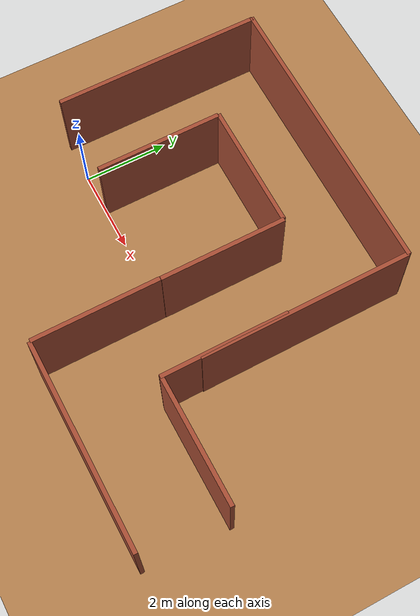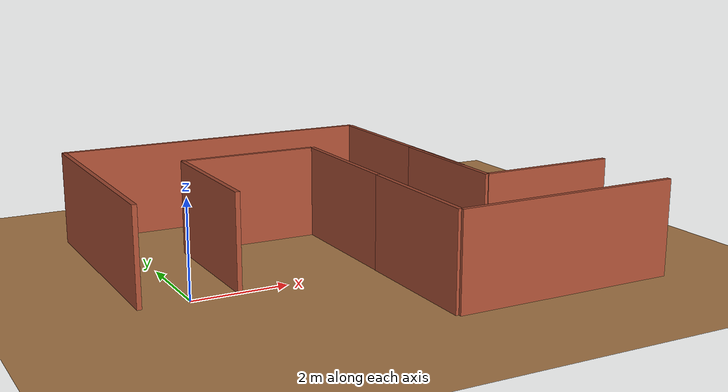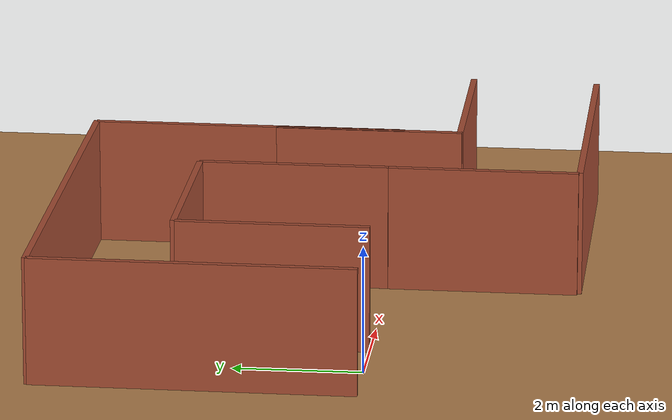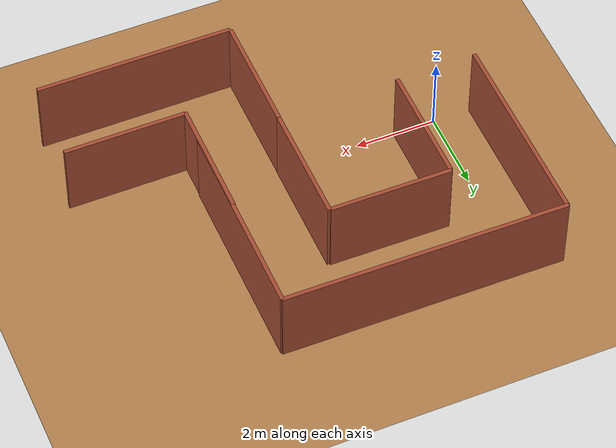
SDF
<sdf version="1.6">
 <world name="default">
  <light name="sun" type="directional">
   <pose>0 0 10 0 -0 0</pose>
   <diffuse>0.8 0.8 0.8 1</diffuse>
   <specular>0.2 0.2 0.2 1</specular>
   <attenuation>
    <range>1000</range>
    <constant>0.9</constant>
    <linear>0.01</linear>
    <quadratic>0.001</quadratic>
   </attenuation>
   <direction>-0.5 0.1 -0.9</direction>
  </light>
  <model name="ground_plane">
   <static>1</static>
   <link name="link">
    <collision name="collision">
     <geometry><plane><normal>0 0 1</normal><size>100 100</size></plane></geometry>
     <surface>
      <contact><collide_bitmask>65535</collide_bitmask></contact>
      <friction><ode><mu>100</mu><mu2>50</mu2></ode></friction>
     </surface>
    </collision>
    <visual name="visual">
     <cast_shadows>0</cast_shadows>
     <geometry><plane><normal>0 0 1</normal><size>100 100</size></plane></geometry>
     <material>
      <script><uri>file://media/materials/scripts/gazebo.material</uri><name>Gazebo/WoodFloor</name></script>
     </material>
    </visual>
   </link>
  </model>
  <gravity>0 0 -9.8</gravity>
  <magnetic_field>6e-06 2.3e-05 -4.2e-05</magnetic_field>
  <atmosphere type="adiabatic"/>
  <physics name="default_physics" default="0" type="ode">
   <max_step_size>0.001</max_step_size>
   <real_time_factor>1</real_time_factor>
   <real_time_update_rate>1000</real_time_update_rate>
  </physics>
  <scene><ambient>0.4 0.4 0.4 1</ambient><background>0.7 0.7 0.7 1</background><shadows>1</shadows></scene>
  <spherical_coordinates>
   <surface_model>EARTH_WGS84</surface_model>
   <latitude_deg>0</latitude_deg>
   <longitude_deg>0</longitude_deg>
   <elevation>0</elevation>
   <heading_deg>0</heading_deg>
  </spherical_coordinates>
  <model name="Untitled">
   <link name="link_0">
    <inertial>
     <mass>4.98571</mass>
     <inertia><ixx>11.9895</ixx><ixy>0</ixy><ixz>0</ixz><iyy>1.66606</iyy><iyz>0</iyz><izz>10.3317</izz></inertia>
    </inertial>
    <pose>-0.990393 2.48292 0.996212 0 -0 0</pose>
    <visual name="visual">
     <geometry><box><size>0.1 4.9857 2</size></box></geometry>
     <material>
      <lighting>1</lighting>
      <script><uri>file://media/materials/scripts/gazebo.material</uri><name>Gazebo/Bricks</name></script>
      <shader type="pixel"><normal_map>__default__</normal_map></shader>
      <ambient>0.3 0.3 0.3 1</ambient>
      <diffuse>0.7 0.7 0.7 1</diffuse>
      <specular>0.01 0.01 0.01 1</specular>
      <emissive>0 0 0 1</emissive>
     </material>
    </visual>
    <collision name="collision">
     <geometry><box><size>0.1 4.9857 2</size></box></geometry>
     <surface>
      <friction>
       <ode><mu>1</mu><mu2>1</mu2><fdir1>0 0 0</fdir1><slip1>0</slip1><slip2>0</slip2></ode>
       <torsional>
        <coefficient>1</coefficient>
        <patch_radius>0</patch_radius>
        <surface_radius>0</surface_radius>
        <use_patch_radius>1</use_patch_radius>
        <ode><slip>0</slip></ode>
       </torsional>
      </friction>
      <bounce><restitution_coefficient>0</restitution_coefficient><threshold>1e+06</threshold></bounce>
      <contact>
       <collide_without_contact>0</collide_without_contact>
       <collide_without_contact_bitmask>1</collide_without_contact_bitmask>
       <collide_bitmask>1</collide_bitmask>
       <ode>
        <soft_cfm>0</soft_cfm>
        <soft_erp>0.2</soft_erp>
        <kp>1e+13</kp>
        <kd>1</kd>
        <max_vel>0.01</max_vel>
        <min_depth>0</min_depth>
       </ode>
       <bullet>
        <split_impulse>1</split_impulse>
        <split_impulse_penetration_threshold>-0.01</split_impulse_penetration_threshold>
        <soft_cfm>0</soft_cfm>
        <soft_erp>0.2</soft_erp>
        <kp>1e+13</kp>
        <kd>1</kd>
       </bullet>
      </contact>
     </surface>
    </collision>
   </link>
   <link name="link_0_clone">
    <inertial>
     <mass>2.98774</mass>
     <inertia><ixx>3.21841</ixx><ixy>0</ixy><ixz>0</ixz><iyy>0.998402</iyy><iyz>0</iyz><izz>2.22499</izz></inertia>
    </inertial>
    <pose>1.00554 1.49859 0.996212 0 -0 0</pose>
    <visual name="visual">
     <geometry><box><size>0.1 2.98772 2</size></box></geometry>
     <material>
      <lighting>1</lighting>
      <script><uri>file://media/materials/scripts/gazebo.material</uri><name>Gazebo/Bricks</name></script>
      <shader type="pixel"><normal_map>__default__</normal_map></shader>
      <ambient>0.3 0.3 0.3 1</ambient>
      <diffuse>0.7 0.7 0.7 1</diffuse>
      <specular>0.01 0.01 0.01 1</specular>
      <emissive>0 0 0 1</emissive>
     </material>
    </visual>
    <collision name="collision">
     <geometry><box><size>0.1 2.98772 2</size></box></geometry>
     <surface>
      <friction>
       <ode><mu>1</mu><mu2>1</mu2><fdir1>0 0 0</fdir1><slip1>0</slip1><slip2>0</slip2></ode>
       <torsional>
        <coefficient>1</coefficient>
        <patch_radius>0</patch_radius>
        <surface_radius>0</surface_radius>
        <use_patch_radius>1</use_patch_radius>
        <ode><slip>0</slip></ode>
       </torsional>
      </friction>
      <bounce><restitution_coefficient>0</restitution_coefficient><threshold>1e+06</threshold></bounce>
      <contact>
       <collide_without_contact>0</collide_without_contact>
       <collide_without_contact_bitmask>1</collide_without_contact_bitmask>
       <collide_bitmask>1</collide_bitmask>
       <ode>
        <soft_cfm>0</soft_cfm>
        <soft_erp>0.2</soft_erp>
        <kp>1e+13</kp>
        <kd>1</kd>
        <max_vel>0.01</max_vel>
        <min_depth>0</min_depth>
       </ode>
       <bullet>
        <split_impulse>1</split_impulse>
        <split_impulse_penetration_threshold>-0.01</split_impulse_penetration_threshold>
        <soft_cfm>0</soft_cfm>
        <soft_erp>0.2</soft_erp>
        <kp>1e+13</kp>
        <kd>1</kd>
       </bullet>
      </contact>
     </surface>
    </collision>
   </link>
   <link name="link_0_clone_0">
    <inertial>
     <mass>7.02726</mass>
     <inertia><ixx>31.2609</ixx><ixy>0</ixy><ixz>0</ixz><iyy>2.34828</iyy><iyz>0</iyz><izz>28.9243</izz></inertia>
    </inertial>
    <pose>2.49105 4.94833 0.996212 0 -0 1.56452</pose>
    <visual name="visual">
     <geometry><box><size>0.1 7.02724 2</size></box></geometry>
     <material>
      <lighting>1</lighting>
      <script><uri>file://media/materials/scripts/gazebo.material</uri><name>Gazebo/Bricks</name></script>
      <shader type="pixel"><normal_map>__default__</normal_map></shader>
      <ambient>0.3 0.3 0.3 1</ambient>
      <diffuse>0.7 0.7 0.7 1</diffuse>
      <specular>0.01 0.01 0.01 1</specular>
      <emissive>0 0 0 1</emissive>
     </material>
    </visual>
    <collision name="collision">
     <geometry><box><size>0.1 7.02724 2</size></box></geometry>
     <surface>
      <friction>
       <ode><mu>1</mu><mu2>1</mu2><fdir1>0 0 0</fdir1><slip1>0</slip1><slip2>0</slip2></ode>
       <torsional>
        <coefficient>1</coefficient>
        <patch_radius>0</patch_radius>
        <surface_radius>0</surface_radius>
        <use_patch_radius>1</use_patch_radius>
        <ode><slip>0</slip></ode>
       </torsional>
      </friction>
      <bounce><restitution_coefficient>0</restitution_coefficient><threshold>1e+06</threshold></bounce>
      <contact>
       <collide_without_contact>0</collide_without_contact>
       <collide_without_contact_bitmask>1</collide_without_contact_bitmask>
       <collide_bitmask>1</collide_bitmask>
       <ode>
        <soft_cfm>0</soft_cfm>
        <soft_erp>0.2</soft_erp>
        <kp>1e+13</kp>
        <kd>1</kd>
        <max_vel>0.01</max_vel>
        <min_depth>0</min_depth>
       </ode>
       <bullet>
        <split_impulse>1</split_impulse>
        <split_impulse_penetration_threshold>-0.01</split_impulse_penetration_threshold>
        <soft_cfm>0</soft_cfm>
        <soft_erp>0.2</soft_erp>
        <kp>1e+13</kp>
        <kd>1</kd>
       </bullet>
      </contact>
     </surface>
    </collision>
   </link>
   <link name="link_0_clone_0_clone">
    <inertial>
     <mass>3.01297</mass>
     <inertia><ixx>3.28364</ixx><ixy>0</ixy><ixz>0</ixz><iyy>1.00683</iyy><iyz>0</iyz><izz>2.28183</izz></inertia>
    </inertial>
    <pose>2.50085 3.00235 0.996212 0 -0 1.56452</pose>
    <visual name="visual">
     <geometry><box><size>0.1 3.01297 2</size></box></geometry>
     <material>
      <lighting>1</lighting>
      <script><uri>file://media/materials/scripts/gazebo.material</uri><name>Gazebo/Bricks</name></script>
      <shader type="pixel"><normal_map>__default__</normal_map></shader>
      <ambient>0.3 0.3 0.3 1</ambient>
      <diffuse>0.7 0.7 0.7 1</diffuse>
      <specular>0.01 0.01 0.01 1</specular>
      <emissive>0 0 0 1</emissive>
     </material>
    </visual>
    <collision name="collision">
     <geometry><box><size>0.1 3.01297 2</size></box></geometry>
     <surface>
      <friction>
       <ode><mu>1</mu><mu2>1</mu2><fdir1>0 0 0</fdir1><slip1>0</slip1><slip2>0</slip2></ode>
       <torsional>
        <coefficient>1</coefficient>
        <patch_radius>0</patch_radius>
        <surface_radius>0</surface_radius>
        <use_patch_radius>1</use_patch_radius>
        <ode><slip>0</slip></ode>
       </torsional>
      </friction>
      <bounce><restitution_coefficient>0</restitution_coefficient><threshold>1e+06</threshold></bounce>
      <contact>
       <collide_without_contact>0</collide_without_contact>
       <collide_without_contact_bitmask>1</collide_without_contact_bitmask>
       <collide_bitmask>1</collide_bitmask>
       <ode>
        <soft_cfm>0</soft_cfm>
        <soft_erp>0.2</soft_erp>
        <kp>1e+13</kp>
        <kd>1</kd>
        <max_vel>0.01</max_vel>
        <min_depth>0</min_depth>
       </ode>
       <bullet>
        <split_impulse>1</split_impulse>
        <split_impulse_penetration_threshold>-0.01</split_impulse_penetration_threshold>
        <soft_cfm>0</soft_cfm>
        <soft_erp>0.2</soft_erp>
        <kp>1e+13</kp>
        <kd>1</kd>
       </bullet>
      </contact>
     </surface>
    </collision>
   </link>
   <link name="link_0_clone_1">
    <inertial>
     <mass>4.98571</mass>
     <inertia><ixx>11.9895</ixx><ixy>0</ixy><ixz>0</ixz><iyy>1.66606</iyy><iyz>0</iyz><izz>10.3317</izz></inertia>
    </inertial>
    <pose>5.98793 2.43289 0.996212 0 -0 0</pose>
    <visual name="visual">
     <geometry><box><size>0.1 4.9857 2</size></box></geometry>
     <material>
      <lighting>1</lighting>
      <script><uri>file://media/materials/scripts/gazebo.material</uri><name>Gazebo/Bricks</name></script>
      <shader type="pixel"><normal_map>__default__</normal_map></shader>
      <ambient>0.3 0.3 0.3 1</ambient>
      <diffuse>0.7 0.7 0.7 1</diffuse>
      <specular>0.01 0.01 0.01 1</specular>
      <emissive>0 0 0 1</emissive>
     </material>
    </visual>
    <collision name="collision">
     <geometry><box><size>0.1 4.9857 2</size></box></geometry>
     <surface>
      <friction>
       <ode><mu>1</mu><mu2>1</mu2><fdir1>0 0 0</fdir1><slip1>0</slip1><slip2>0</slip2></ode>
       <torsional>
        <coefficient>1</coefficient>
        <patch_radius>0</patch_radius>
        <surface_radius>0</surface_radius>
        <use_patch_radius>1</use_patch_radius>
        <ode><slip>0</slip></ode>
       </torsional>
      </friction>
      <bounce><restitution_coefficient>0</restitution_coefficient><threshold>1e+06</threshold></bounce>
      <contact>
       <collide_without_contact>0</collide_without_contact>
       <collide_without_contact_bitmask>1</collide_without_contact_bitmask>
       <collide_bitmask>1</collide_bitmask>
       <ode>
        <soft_cfm>0</soft_cfm>
        <soft_erp>0.2</soft_erp>
        <kp>1e+13</kp>
        <kd>1</kd>
        <max_vel>0.01</max_vel>
        <min_depth>0</min_depth>
       </ode>
       <bullet>
        <split_impulse>1</split_impulse>
        <split_impulse_penetration_threshold>-0.01</split_impulse_penetration_threshold>
        <soft_cfm>0</soft_cfm>
        <soft_erp>0.2</soft_erp>
        <kp>1e+13</kp>
        <kd>1</kd>
       </bullet>
      </contact>
     </surface>
    </collision>
   </link>
   <link name="link_0_clone_clone">
    <inertial>
     <mass>2.98774</mass>
     <inertia><ixx>3.21841</ixx><ixy>0</ixy><ixz>0</ixz><iyy>0.998402</iyy><iyz>0</iyz><izz>2.22499</izz></inertia>
    </inertial>
    <pose>4.02637 1.50915 0.996212 0 -0 0</pose>
    <visual name="visual">
     <geometry><box><size>0.1 2.98772 2</size></box></geometry>
     <material>
      <lighting>1</lighting>
      <script><uri>file://media/materials/scripts/gazebo.material</uri><name>Gazebo/Bricks</name></script>
      <shader type="pixel"><normal_map>__default__</normal_map></shader>
      <ambient>0.3 0.3 0.3 1</ambient>
      <diffuse>0.7 0.7 0.7 1</diffuse>
      <specular>0.01 0.01 0.01 1</specular>
      <emissive>0 0 0 1</emissive>
     </material>
    </visual>
    <collision name="collision">
     <geometry><box><size>0.1 2.98772 2</size></box></geometry>
     <surface>
      <friction>
       <ode><mu>1</mu><mu2>1</mu2><fdir1>0 0 0</fdir1><slip1>0</slip1><slip2>0</slip2></ode>
       <torsional>
        <coefficient>1</coefficient>
        <patch_radius>0</patch_radius>
        <surface_radius>0</surface_radius>
        <use_patch_radius>1</use_patch_radius>
        <ode><slip>0</slip></ode>
       </torsional>
      </friction>
      <bounce><restitution_coefficient>0</restitution_coefficient><threshold>1e+06</threshold></bounce>
      <contact>
       <collide_without_contact>0</collide_without_contact>
       <collide_without_contact_bitmask>1</collide_without_contact_bitmask>
       <collide_bitmask>1</collide_bitmask>
       <ode>
        <soft_cfm>0</soft_cfm>
        <soft_erp>0.2</soft_erp>
        <kp>1e+13</kp>
        <kd>1</kd>
        <max_vel>0.01</max_vel>
        <min_depth>0</min_depth>
       </ode>
       <bullet>
        <split_impulse>1</split_impulse>
        <split_impulse_penetration_threshold>-0.01</split_impulse_penetration_threshold>
        <soft_cfm>0</soft_cfm>
        <soft_erp>0.2</soft_erp>
        <kp>1e+13</kp>
        <kd>1</kd>
       </bullet>
      </contact>
     </surface>
    </collision>
   </link>
   <link name="link_0_clone_clone_clone">
    <inertial>
     <mass>2.98774</mass>
     <inertia><ixx>3.21841</ixx><ixy>0</ixy><ixz>0</ixz><iyy>0.998402</iyy><iyz>0</iyz><izz>2.22499</izz></inertia>
    </inertial>
    <pose>4.02 -1.48246 0.996212 0 -0 0</pose>
    <visual name="visual">
     <geometry><box><size>0.1 2.98772 2</size></box></geometry>
     <material>
      <lighting>1</lighting>
      <script><uri>file://media/materials/scripts/gazebo.material</uri><name>Gazebo/Bricks</name></script>
      <shader type="pixel"><normal_map>__default__</normal_map></shader>
      <ambient>0.3 0.3 0.3 1</ambient>
      <diffuse>0.7 0.7 0.7 1</diffuse>
      <specular>0.01 0.01 0.01 1</specular>
      <emissive>0 0 0 1</emissive>
     </material>
    </visual>
    <collision name="collision">
     <geometry><box><size>0.1 2.98772 2</size></box></geometry>
     <surface>
      <friction>
       <ode><mu>1</mu><mu2>1</mu2><fdir1>0 0 0</fdir1><slip1>0</slip1><slip2>0</slip2></ode>
       <torsional>
        <coefficient>1</coefficient>
        <patch_radius>0</patch_radius>
        <surface_radius>0</surface_radius>
        <use_patch_radius>1</use_patch_radius>
        <ode><slip>0</slip></ode>
       </torsional>
      </friction>
      <bounce><restitution_coefficient>0</restitution_coefficient><threshold>1e+06</threshold></bounce>
      <contact>
       <collide_without_contact>0</collide_without_contact>
       <collide_without_contact_bitmask>1</collide_without_contact_bitmask>
       <collide_bitmask>1</collide_bitmask>
       <ode>
        <soft_cfm>0</soft_cfm>
        <soft_erp>0.2</soft_erp>
        <kp>1e+13</kp>
        <kd>1</kd>
        <max_vel>0.01</max_vel>
        <min_depth>0</min_depth>
       </ode>
       <bullet>
        <split_impulse>1</split_impulse>
        <split_impulse_penetration_threshold>-0.01</split_impulse_penetration_threshold>
        <soft_cfm>0</soft_cfm>
        <soft_erp>0.2</soft_erp>
        <kp>1e+13</kp>
        <kd>1</kd>
       </bullet>
      </contact>
     </surface>
    </collision>
   </link>
   <link name="link_0_clone_clone_clone_0">
    <inertial>
     <mass>2.98774</mass>
     <inertia><ixx>3.21841</ixx><ixy>0</ixy><ixz>0</ixz><iyy>0.998402</iyy><iyz>0</iyz><izz>2.22499</izz></inertia>
    </inertial>
    <pose>5.96903 0.510976 0.996212 0 -0 0</pose>
    <visual name="visual">
     <geometry><box><size>0.1 2.98772 2</size></box></geometry>
     <material>
      <lighting>1</lighting>
      <script><uri>file://media/materials/scripts/gazebo.material</uri><name>Gazebo/Bricks</name></script>
      <shader type="pixel"><normal_map>__default__</normal_map></shader>
      <ambient>0.3 0.3 0.3 1</ambient>
      <diffuse>0.7 0.7 0.7 1</diffuse>
      <specular>0.01 0.01 0.01 1</specular>
      <emissive>0 0 0 1</emissive>
     </material>
    </visual>
    <collision name="collision">
     <geometry><box><size>0.1 2.98772 2</size></box></geometry>
     <surface>
      <friction>
       <ode><mu>1</mu><mu2>1</mu2><fdir1>0 0 0</fdir1><slip1>0</slip1><slip2>0</slip2></ode>
       <torsional>
        <coefficient>1</coefficient>
        <patch_radius>0</patch_radius>
        <surface_radius>0</surface_radius>
        <use_patch_radius>1</use_patch_radius>
        <ode><slip>0</slip></ode>
       </torsional>
      </friction>
      <bounce><restitution_coefficient>0</restitution_coefficient><threshold>1e+06</threshold></bounce>
      <contact>
       <collide_without_contact>0</collide_without_contact>
       <collide_without_contact_bitmask>1</collide_without_contact_bitmask>
       <collide_bitmask>1</collide_bitmask>
       <ode>
        <soft_cfm>0</soft_cfm>
        <soft_erp>0.2</soft_erp>
        <kp>1e+13</kp>
        <kd>1</kd>
        <max_vel>0.01</max_vel>
        <min_depth>0</min_depth>
       </ode>
       <bullet>
        <split_impulse>1</split_impulse>
        <split_impulse_penetration_threshold>-0.01</split_impulse_penetration_threshold>
        <soft_cfm>0</soft_cfm>
        <soft_erp>0.2</soft_erp>
        <kp>1e+13</kp>
        <kd>1</kd>
       </bullet>
      </contact>
     </surface>
    </collision>
   </link>
   <link name="link_0_clone_clone_clone_clone">
    <inertial>
     <mass>4.87343</mass>
     <inertia><ixx>11.2698</ixx><ixy>0</ixy><ixz>0</ixz><iyy>1.62854</iyy><iyz>0</iyz><izz>9.64936</izz></inertia>
    </inertial>
    <pose>6.46994 -2.98068 0.996212 0 -0 1.57641</pose>
    <visual name="visual">
     <geometry><box><size>0.1 4.87339 2</size></box></geometry>
     <material>
      <lighting>1</lighting>
      <script><uri>file://media/materials/scripts/gazebo.material</uri><name>Gazebo/Bricks</name></script>
      <shader type="pixel"><normal_map>__default__</normal_map></shader>
      <ambient>0.3 0.3 0.3 1</ambient>
      <diffuse>0.7 0.7 0.7 1</diffuse>
      <specular>0.01 0.01 0.01 1</specular>
      <emissive>0 0 0 1</emissive>
     </material>
    </visual>
    <collision name="collision">
     <geometry><box><size>0.1 4.87339 2</size></box></geometry>
     <surface>
      <friction>
       <ode><mu>1</mu><mu2>1</mu2><fdir1>0 0 0</fdir1><slip1>0</slip1><slip2>0</slip2></ode>
       <torsional>
        <coefficient>1</coefficient>
        <patch_radius>0</patch_radius>
        <surface_radius>0</surface_radius>
        <use_patch_radius>1</use_patch_radius>
        <ode><slip>0</slip></ode>
       </torsional>
      </friction>
      <bounce><restitution_coefficient>0</restitution_coefficient><threshold>1e+06</threshold></bounce>
      <contact>
       <collide_without_contact>0</collide_without_contact>
       <collide_without_contact_bitmask>1</collide_without_contact_bitmask>
       <collide_bitmask>1</collide_bitmask>
       <ode>
        <soft_cfm>0</soft_cfm>
        <soft_erp>0.2</soft_erp>
        <kp>1e+13</kp>
        <kd>1</kd>
        <max_vel>0.01</max_vel>
        <min_depth>0</min_depth>
       </ode>
       <bullet>
        <split_impulse>1</split_impulse>
        <split_impulse_penetration_threshold>-0.01</split_impulse_penetration_threshold>
        <soft_cfm>0</soft_cfm>
        <soft_erp>0.2</soft_erp>
        <kp>1e+13</kp>
        <kd>1</kd>
       </bullet>
      </contact>
     </surface>
    </collision>
   </link>
   <link name="link_0_clone_clone_clone_clone_clone">
    <inertial>
     <mass>2.98822</mass>
     <inertia><ixx>3.21964</ixx><ixy>0</ixy><ixz>0</ixz><iyy>0.998564</iyy><iyz>0</iyz><izz>2.22605</izz></inertia>
    </inertial>
    <pose>7.48228 -0.943239 0.996212 0 -0 1.57641</pose>
    <visual name="visual">
     <geometry><box><size>0.1 2.98819 2</size></box></geometry>
     <material>
      <lighting>1</lighting>
      <script><uri>file://media/materials/scripts/gazebo.material</uri><name>Gazebo/Bricks</name></script>
      <shader type="pixel"><normal_map>__default__</normal_map></shader>
      <ambient>0.3 0.3 0.3 1</ambient>
      <diffuse>0.7 0.7 0.7 1</diffuse>
      <specular>0.01 0.01 0.01 1</specular>
      <emissive>0 0 0 1</emissive>
     </material>
    </visual>
    <collision name="collision">
     <geometry><box><size>0.1 2.98819 2</size></box></geometry>
     <surface>
      <friction>
       <ode><mu>1</mu><mu2>1</mu2><fdir1>0 0 0</fdir1><slip1>0</slip1><slip2>0</slip2></ode>
       <torsional>
        <coefficient>1</coefficient>
        <patch_radius>0</patch_radius>
        <surface_radius>0</surface_radius>
        <use_patch_radius>1</use_patch_radius>
        <ode><slip>0</slip></ode>
       </torsional>
      </friction>
      <bounce><restitution_coefficient>0</restitution_coefficient><threshold>1e+06</threshold></bounce>
      <contact>
       <collide_without_contact>0</collide_without_contact>
       <collide_without_contact_bitmask>1</collide_without_contact_bitmask>
       <collide_bitmask>1</collide_bitmask>
       <ode>
        <soft_cfm>0</soft_cfm>
        <soft_erp>0.2</soft_erp>
        <kp>1e+13</kp>
        <kd>1</kd>
        <max_vel>0.01</max_vel>
        <min_depth>0</min_depth>
       </ode>
       <bullet>
        <split_impulse>1</split_impulse>
        <split_impulse_penetration_threshold>-0.01</split_impulse_penetration_threshold>
        <soft_cfm>0</soft_cfm>
        <soft_erp>0.2</soft_erp>
        <kp>1e+13</kp>
        <kd>1</kd>
       </bullet>
      </contact>
     </surface>
    </collision>
   </link>
   <static>0</static>
   <pose>0 2e-06 0 0 -0 0</pose>
  </model>
 </world>
</sdf>
